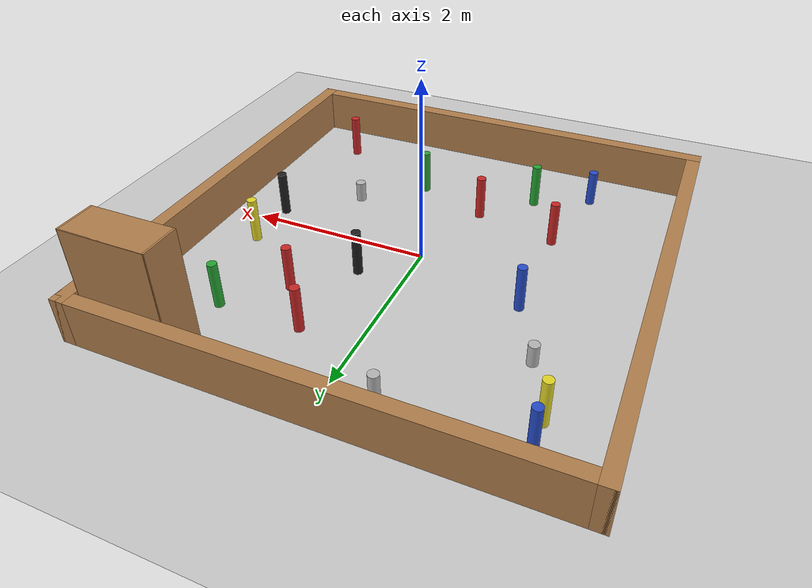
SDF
<sdf version="1.7">
 <world name="default">
  <model name="ground_plane">
   <static>1</static>
   <link name="link">
    <collision name="collision">
     <geometry><plane><normal>0 0 1</normal><size>100 100</size></plane></geometry>
     <surface><friction><ode><mu>100</mu><mu2>50</mu2></ode></friction></surface>
    </collision>
    <visual name="visual">
     <cast_shadows>0</cast_shadows>
     <geometry><plane><normal>0 0 1</normal><size>100 100</size></plane></geometry>
     <material>
      <script><uri>file://media/materials/scripts/gazebo.material</uri><name>Gazebo/Grey</name></script>
     </material>
    </visual>
   </link>
  </model>
  <light name="sun" type="directional">
   <pose>0 0 10 0 -0 0</pose>
   <diffuse>0.8 0.8 0.8 1</diffuse>
   <specular>0.2 0.2 0.2 1</specular>
   <attenuation>
    <range>1000</range>
    <constant>0.9</constant>
    <linear>0.01</linear>
    <quadratic>0.001</quadratic>
   </attenuation>
   <direction>-0.5 0.1 -0.9</direction>
   <spot><inner_angle>0</inner_angle><outer_angle>0</outer_angle><falloff>0</falloff></spot>
  </light>
  <scene><shadows>0</shadows><ambient>0.4 0.4 0.4 1</ambient><background>0.7 0.7 0.7 1</background></scene>
  <physics type="ode">
   <real_time_update_rate>1000</real_time_update_rate>
   <max_step_size>0.001</max_step_size>
   <real_time_factor>1</real_time_factor>
   <ode>
    <solver>
     <type>quick</type>
     <iters>150</iters>
     <precon_iters>0</precon_iters>
     <sor>1.4</sor>
     <use_dynamic_moi_rescaling>1</use_dynamic_moi_rescaling>
    </solver>
    <constraints>
     <cfm>1e-05</cfm>
     <erp>0.2</erp>
     <contact_max_correcting_vel>2000</contact_max_correcting_vel>
     <contact_surface_layer>0.01</contact_surface_layer>
    </constraints>
   </ode>
  </physics>
  <model name="turtlebot3_dqn_world">
   <static>1</static>
   <frame name="turtlebot3_square::__model__" attached_to="turtlebot3_square::Wall_1">
    <pose relative_to="__model__">0 0 0 0 -0 0</pose>
   </frame>
   <link name="turtlebot3_square::Wall_1">
    <collision name="Wall_1_Collision">
     <geometry><box><size>5 0.15 0.5</size></box></geometry>
     <pose>0 0 0.25 0 -0 0</pose>
    </collision>
    <visual name="Wall_1_Visual">
     <pose>0 0 0.25 0 -0 0</pose>
     <geometry><box><size>5 0.15 0.5</size></box></geometry>
     <material>
      <script><uri>file://media/materials/scripts/gazebo.material</uri><name>Gazebo/Wood</name></script>
      <ambient>1 1 1 1</ambient>
     </material>
    </visual>
    <pose relative_to="turtlebot3_square::__model__">-2.425 0 0 0 -0 1.5708</pose>
   </link>
   <link name="turtlebot3_square::Wall_2">
    <collision name="Wall_2_Collision">
     <geometry><box><size>5 0.15 0.5</size></box></geometry>
     <pose>0 0 0.25 0 -0 0</pose>
    </collision>
    <visual name="Wall_2_Visual">
     <pose>0 0 0.25 0 -0 0</pose>
     <geometry><box><size>5 0.15 0.5</size></box></geometry>
     <material>
      <script><uri>file://media/materials/scripts/gazebo.material</uri><name>Gazebo/Wood</name></script>
      <ambient>1 1 1 1</ambient>
     </material>
    </visual>
    <pose relative_to="turtlebot3_square::__model__">0 2.425 0 0 -0 0</pose>
   </link>
   <link name="turtlebot3_square::Wall_3">
    <collision name="Wall_3_Collision">
     <geometry><box><size>5 0.15 0.5</size></box></geometry>
     <pose>0 0 0.25 0 -0 0</pose>
    </collision>
    <visual name="Wall_3_Visual">
     <pose>0 0 0.25 0 -0 0</pose>
     <geometry><box><size>5 0.15 0.5</size></box></geometry>
     <material>
      <script><uri>file://media/materials/scripts/gazebo.material</uri><name>Gazebo/Wood</name></script>
      <ambient>1 1 1 1</ambient>
     </material>
    </visual>
    <pose relative_to="turtlebot3_square::__model__">2.425 0 0 0 0 -1.5708</pose>
   </link>
   <link name="turtlebot3_square::Wall_4">
    <collision name="Wall_4_Collision">
     <geometry><box><size>5 0.15 0.5</size></box></geometry>
     <pose>0 0 0.25 0 -0 0</pose>
    </collision>
    <visual name="Wall_4_Visual">
     <pose>0 0 0.25 0 -0 0</pose>
     <geometry><box><size>5 0.15 0.5</size></box></geometry>
     <material>
      <script><uri>file://media/materials/scripts/gazebo.material</uri><name>Gazebo/Wood</name></script>
      <ambient>1 1 1 1</ambient>
     </material>
    </visual>
    <pose relative_to="turtlebot3_square::__model__">0 -2.425 0 0 -0 3.14159</pose>
   </link>
   <static>1</static>
  </model>
  <model name="turtlebot3_dqn_obstacles">
   <plugin name="obstacles" filename="libobstacles.so"/>
   <frame name="obstacles::__model__" attached_to="obstacles::obstacle">
    <pose relative_to="__model__">0 0 0 0 -0 0</pose>
   </frame>
   <link name="obstacles::obstacle">
    <collision name="obstacle_1">
     <pose>-0.3 -1 0.25 0 -0 0</pose>
     <geometry><cylinder><radius>0.05</radius><length>0.5</length></cylinder></geometry>
    </collision>
    <visual name="obstacle_1">
     <pose>-0.3 -1 0.25 0 -0 0</pose>
     <geometry><cylinder><radius>0.05</radius><length>0.5</length></cylinder></geometry>
     <material>
      <script><uri>file://media/materials/scripts/gazebo.material</uri><name>Gazebo/Red</name></script>
     </material>
    </visual>
    <collision name="obstacle_2">
     <pose>-1.2 -0.8 0.25 0 -0 0</pose>
     <geometry><cylinder><radius>0.05</radius><length>0.5</length></cylinder></geometry>
    </collision>
    <visual name="obstacle_2">
     <pose>-1.2 -0.8 0.25 0 -0 0</pose>
     <geometry><cylinder><radius>0.05</radius><length>0.5</length></cylinder></geometry>
     <material>
      <script><uri>file://media/materials/scripts/gazebo.material</uri><name>Gazebo/Red</name></script>
     </material>
    </visual>
    <collision name="obstacle_3">
     <pose>-1.8 1.7 0.25 0 -0 0</pose>
     <geometry><cylinder><radius>0.05</radius><length>0.5</length></cylinder></geometry>
    </collision>
    <visual name="obstacle_3">
     <pose>-1.8 1.7 0.25 0 -0 0</pose>
     <geometry><cylinder><radius>0.05</radius><length>0.5</length></cylinder></geometry>
     <material>
      <script><uri>file://media/materials/scripts/gazebo.material</uri><name>Gazebo/Yellow</name></script>
     </material>
    </visual>
    <collision name="obstacle_4">
     <pose>-1.2 0.4 0.25 0 -0 0</pose>
     <geometry><cylinder><radius>0.05</radius><length>0.5</length></cylinder></geometry>
    </collision>
    <visual name="obstacle_4">
     <pose>-1.2 0.4 0.25 0 -0 0</pose>
     <geometry><cylinder><radius>0.05</radius><length>0.5</length></cylinder></geometry>
     <material>
      <script><uri>file://media/materials/scripts/gazebo.material</uri><name>Gazebo/Blue</name></script>
     </material>
    </visual>
    <collision name="obstacle_5">
     <pose>0.5 -1.3 0.25 0 -0 0</pose>
     <geometry><cylinder><radius>0.05</radius><length>0.5</length></cylinder></geometry>
    </collision>
    <visual name="obstacle_5">
     <pose>0.5 -1.3 0.25 0 -0 0</pose>
     <geometry><cylinder><radius>0.05</radius><length>0.5</length></cylinder></geometry>
     <material>
      <script><uri>file://media/materials/scripts/gazebo.material</uri><name>Gazebo/Green</name></script>
     </material>
    </visual>
    <collision name="obstacle_6">
     <pose>0.6 1.5 0.25 0 -0 0</pose>
     <geometry><cylinder><radius>0.05</radius><length>0.5</length></cylinder></geometry>
    </collision>
    <visual name="obstacle_6">
     <pose>0.6 1.5 0.25 0 -0 0</pose>
     <geometry><cylinder><radius>0.05</radius><length>0.5</length></cylinder></geometry>
     <material>
      <script><uri>file://media/materials/scripts/gazebo.material</uri><name>Gazebo/Red</name></script>
     </material>
    </visual>
    <collision name="obstacle_7">
     <pose>0.5 0.5 0.25 0 -0 0</pose>
     <geometry><cylinder><radius>0.05</radius><length>0.5</length></cylinder></geometry>
    </collision>
    <visual name="obstacle_7">
     <pose>0.5 0.5 0.25 0 -0 0</pose>
     <geometry><cylinder><radius>0.05</radius><length>0.5</length></cylinder></geometry>
     <material>
      <script><uri>file://media/materials/scripts/gazebo.material</uri><name>Gazebo/Black</name></script>
     </material>
    </visual>
    <collision name="obstacle_8">
     <pose>1.5 1.5 0.25 0 -0 0</pose>
     <geometry><cylinder><radius>0.05</radius><length>0.5</length></cylinder></geometry>
    </collision>
    <visual name="obstacle_8">
     <pose>1.5 1.5 0.25 0 -0 0</pose>
     <geometry><cylinder><radius>0.05</radius><length>0.5</length></cylinder></geometry>
     <material>
      <script><uri>file://media/materials/scripts/gazebo.material</uri><name>Gazebo/Green</name></script>
     </material>
    </visual>
    <collision name="obstacle_9">
     <pose>1 1 0.25 0 -0 0</pose>
     <geometry><cylinder><radius>0.05</radius><length>0.5</length></cylinder></geometry>
    </collision>
    <visual name="obstacle_9">
     <pose>1 1 0.25 0 -0 0</pose>
     <geometry><cylinder><radius>0.05</radius><length>0.5</length></cylinder></geometry>
     <material>
      <script><uri>file://media/materials/scripts/gazebo.material</uri><name>Gazebo/Red</name></script>
     </material>
    </visual>
    <collision name="obstacle_10">
     <pose>-0.8 -1.5 0.25 0 -0 0</pose>
     <geometry><cylinder><radius>0.05</radius><length>0.5</length></cylinder></geometry>
    </collision>
    <visual name="obstacle_10">
     <pose>-0.8 -1.5 0.25 0 -0 0</pose>
     <geometry><cylinder><radius>0.05</radius><length>0.5</length></cylinder></geometry>
     <material>
      <script><uri>file://media/materials/scripts/gazebo.material</uri><name>Gazebo/Green</name></script>
     </material>
    </visual>
    <collision name="obstacle_11">
     <pose>-1.8 2 0.25 0 -0 0</pose>
     <geometry><cylinder><radius>0.05</radius><length>0.5</length></cylinder></geometry>
    </collision>
    <visual name="obstacle_11">
     <pose>-1.8 2 0.25 0 -0 0</pose>
     <geometry><cylinder><radius>0.05</radius><length>0.5</length></cylinder></geometry>
     <material>
      <script><uri>file://media/materials/scripts/gazebo.material</uri><name>Gazebo/Blue</name></script>
     </material>
    </visual>
    <collision name="obstacle_12">
     <pose>1.8 -0.2 0.25 0 -0 0</pose>
     <geometry><cylinder><radius>0.05</radius><length>0.5</length></cylinder></geometry>
    </collision>
    <visual name="obstacle_12">
     <pose>1.8 -0.2 0.25 0 -0 0</pose>
     <geometry><cylinder><radius>0.05</radius><length>0.5</length></cylinder></geometry>
     <material>
      <script><uri>file://media/materials/scripts/gazebo.material</uri><name>Gazebo/Black</name></script>
     </material>
    </visual>
    <collision name="obstacle_13">
     <pose>1.8 0.4 0.25 0 -0 0</pose>
     <geometry><cylinder><radius>0.05</radius><length>0.5</length></cylinder></geometry>
    </collision>
    <visual name="obstacle_13">
     <pose>1.8 0.4 0.25 0 -0 0</pose>
     <geometry><cylinder><radius>0.05</radius><length>0.5</length></cylinder></geometry>
     <material>
      <script><uri>file://media/materials/scripts/gazebo.material</uri><name>Gazebo/Yellow</name></script>
     </material>
    </visual>
    <collision name="obstacle_14">
     <pose>1.7 -1.8 0.25 0 -0 0</pose>
     <geometry><cylinder><radius>0.05</radius><length>0.5</length></cylinder></geometry>
    </collision>
    <visual name="obstacle_14">
     <pose>1.7 -1.8 0.25 0 -0 0</pose>
     <geometry><cylinder><radius>0.05</radius><length>0.5</length></cylinder></geometry>
     <material>
      <script><uri>file://media/materials/scripts/gazebo.material</uri><name>Gazebo/Red</name></script>
     </material>
    </visual>
    <collision name="obstacle_15">
     <pose>-1.4 -1.8 0.15 0 -0 0</pose>
     <geometry><cylinder><radius>0.05</radius><length>0.5</length></cylinder></geometry>
    </collision>
    <visual name="obstacle_15">
     <pose>-1.4 -1.8 0.15 0 -0 0</pose>
     <geometry><cylinder><radius>0.05</radius><length>0.5</length></cylinder></geometry>
     <material>
      <script><uri>file://media/materials/scripts/gazebo.material</uri><name>Gazebo/Blue</name></script>
     </material>
    </visual>
    <pose relative_to="obstacles::__model__">0 0 0 0 -0 0</pose>
   </link>
   <static>1</static>
  </model>
  <gravity>0 0 -9.8</gravity>
  <magnetic_field>6e-06 2.3e-05 -4.2e-05</magnetic_field>
  <atmosphere type="adiabatic"/>
  <audio><device>default</device></audio>
  <spherical_coordinates>
   <surface_model>EARTH_WGS84</surface_model>
   <latitude_deg>0</latitude_deg>
   <longitude_deg>0</longitude_deg>
   <elevation>0</elevation>
   <heading_deg>0</heading_deg>
  </spherical_coordinates>
  <model name="bookshelf">
   <static>1</static>
   <link name="link">
    <inertial><mass>1</mass></inertial>
    <collision name="back">
     <pose>0 0.005 0.6 0 -0 0</pose>
     <geometry><box><size>0.9 0.01 1.2</size></box></geometry>
    </collision>
    <visual name="visual1">
     <pose>0 0.005 0.6 0 -0 0</pose>
     <geometry><box><size>0.9 0.01 1.2</size></box></geometry>
     <material>
      <script><uri>file://media/materials/scripts/gazebo.material</uri><name>Gazebo/Wood</name></script>
     </material>
    </visual>
    <collision name="left_side">
     <pose>0.45 -0.195 0.6 0 -0 0</pose>
     <geometry><box><size>0.02 0.4 1.2</size></box></geometry>
    </collision>
    <visual name="visual2">
     <pose>0.45 -0.195 0.6 0 -0 0</pose>
     <geometry><box><size>0.02 0.4 1.2</size></box></geometry>
     <material>
      <script><uri>file://media/materials/scripts/gazebo.material</uri><name>Gazebo/Wood</name></script>
     </material>
    </visual>
    <collision name="right_side">
     <pose>-0.45 -0.195 0.6 0 -0 0</pose>
     <geometry><box><size>0.02 0.4 1.2</size></box></geometry>
    </collision>
    <visual name="visual3">
     <pose>-0.45 -0.195 0.6 0 -0 0</pose>
     <geometry><box><size>0.02 0.4 1.2</size></box></geometry>
     <material>
      <script><uri>file://media/materials/scripts/gazebo.material</uri><name>Gazebo/Wood</name></script>
     </material>
    </visual>
    <collision name="bottom">
     <pose>0 -0.195 0.03 0 -0 0</pose>
     <geometry><box><size>0.88 0.4 0.06</size></box></geometry>
    </collision>
    <visual name="visual4">
     <pose>0 -0.195 0.03 0 -0 0</pose>
     <geometry><box><size>0.88 0.4 0.06</size></box></geometry>
     <material>
      <script><uri>file://media/materials/scripts/gazebo.material</uri><name>Gazebo/Wood</name></script>
     </material>
    </visual>
    <collision name="top">
     <pose>0 -0.195 1.19 0 -0 0</pose>
     <geometry><box><size>0.88 0.4 0.02</size></box></geometry>
    </collision>
    <visual name="visual5">
     <pose>0 -0.195 1.19 0 -0 0</pose>
     <geometry><box><size>0.88 0.4 0.02</size></box></geometry>
     <material>
      <script><uri>file://media/materials/scripts/gazebo.material</uri><name>Gazebo/Wood</name></script>
     </material>
    </visual>
    <collision name="low_shelf">
     <pose>0 -0.195 0.43 0 -0 0</pose>
     <geometry><box><size>0.88 0.4 0.02</size></box></geometry>
    </collision>
    <visual name="visual6">
     <pose>0 -0.195 0.43 0 -0 0</pose>
     <geometry><box><size>0.88 0.4 0.02</size></box></geometry>
     <material>
      <script><uri>file://media/materials/scripts/gazebo.material</uri><name>Gazebo/Wood</name></script>
     </material>
    </visual>
    <collision name="high_shelf">
     <pose>0 -0.195 0.8 0 -0 0</pose>
     <geometry><box><size>0.88 0.4 0.02</size></box></geometry>
    </collision>
    <visual name="visual7">
     <pose>0 -0.195 0.8 0 -0 0</pose>
     <geometry><box><size>0.88 0.4 0.02</size></box></geometry>
     <material>
      <script><uri>file://media/materials/scripts/gazebo.material</uri><name>Gazebo/Wood</name></script>
     </material>
    </visual>
   </link>
   <pose>1.85307 2.33448 0 0 -0 0</pose>
  </model>
  <model name="beer">
   <link name="link">
    <pose>0 0 0.115 0 -0 0</pose>
    <inertial>
     <mass>0.39</mass>
     <inertia><ixx>0.00058</ixx><ixy>0</ixy><ixz>0</ixz><iyy>0.00058</iyy><iyz>0</iyz><izz>0.00019</izz></inertia>
    </inertial>
    <collision name="collision">
     <geometry><cylinder><radius>0.055</radius><length>0.23</length></cylinder></geometry>
    </collision>
    <visual name="visual">
     <geometry><cylinder><radius>0.055</radius><length>0.23</length></cylinder></geometry>
     <material>
      <script>
       <uri>model://beer/materials/scripts</uri>
       <uri>model://beer/materials/textures</uri>
       <name>Beer/Diffuse</name>
      </script>
     </material>
    </visual>
   </link>
   <pose>-0.400972 1.94446 -2e-06 4e-06 -0 0</pose>
  </model>
  <model name="beer_0">
   <link name="link">
    <pose>0 0 0.115 0 -0 0</pose>
    <inertial>
     <mass>0.39</mass>
     <inertia><ixx>0.00058</ixx><ixy>0</ixy><ixz>0</ixz><iyy>0.00058</iyy><iyz>0</iyz><izz>0.00019</izz></inertia>
    </inertial>
    <collision name="collision">
     <geometry><cylinder><radius>0.055</radius><length>0.23</length></cylinder></geometry>
    </collision>
    <visual name="visual">
     <geometry><cylinder><radius>0.055</radius><length>0.23</length></cylinder></geometry>
     <material>
      <script>
       <uri>model://beer/materials/scripts</uri>
       <uri>model://beer/materials/textures</uri>
       <name>Beer/Diffuse</name>
      </script>
     </material>
    </visual>
   </link>
   <pose>1.12004 -0.792142 -8e-06 -4e-06 1e-06 0</pose>
  </model>
  <model name="beer_1">
   <link name="link">
    <pose>0 0 0.115 0 -0 0</pose>
    <inertial>
     <mass>0.39</mass>
     <inertia><ixx>0.00058</ixx><ixy>0</ixy><ixz>0</ixz><iyy>0.00058</iyy><iyz>0</iyz><izz>0.00019</izz></inertia>
    </inertial>
    <collision name="collision">
     <geometry><cylinder><radius>0.055</radius><length>0.23</length></cylinder></geometry>
    </collision>
    <visual name="visual">
     <geometry><cylinder><radius>0.055</radius><length>0.23</length></cylinder></geometry>
     <material>
      <script>
       <uri>model://beer/materials/scripts</uri>
       <uri>model://beer/materials/textures</uri>
       <name>Beer/Diffuse</name>
      </script>
     </material>
    </visual>
   </link>
   <pose>-1.52994 1.0739 -2e-06 4e-06 -1e-06 0</pose>
  </model>
 </world>
</sdf>
